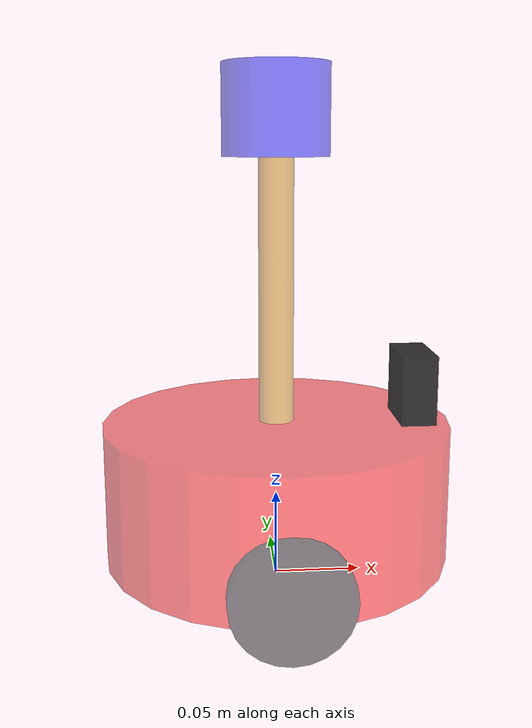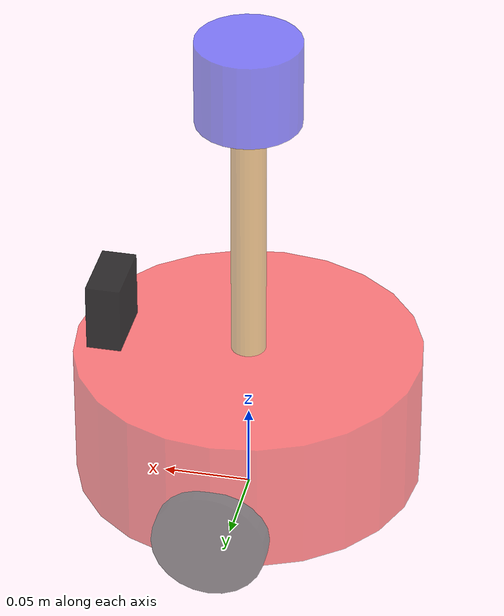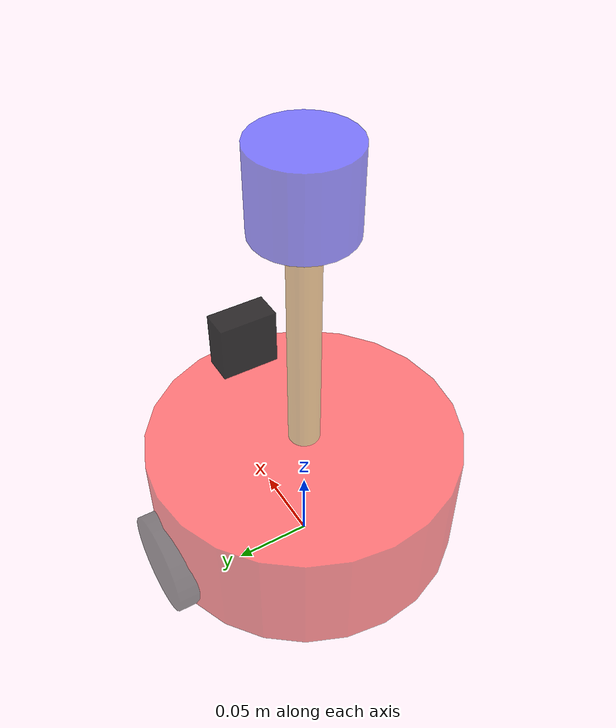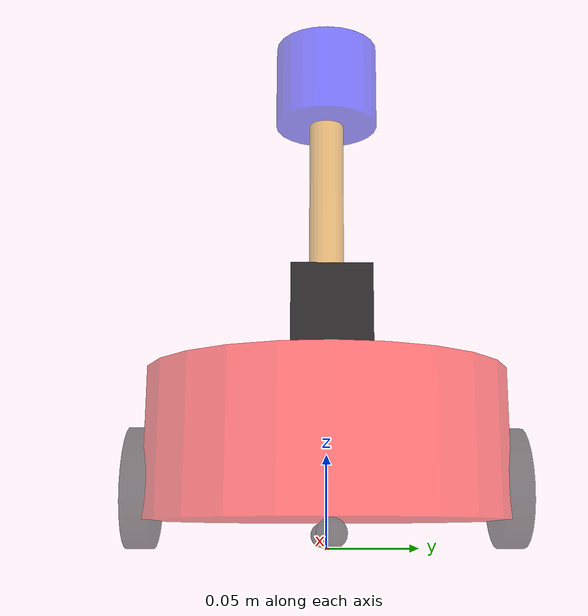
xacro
<!-- 组合小车底盘与摄像头 -->
<robot name="my_car_camera" xmlns:xacro="http://wiki.ros.org/xacro">
    <xacro:include filename="head.xacro" />
    <xacro:include filename="car_base.urdf.xacro" />
    <xacro:include filename="car_camera.urdf.xacro" />
    <xacro:include filename="car_laser.urdf.xacro" />

    <!--运动控制-->
    <xacro:include filename="gazebo/move.xacro" />
    <!--雷达控制-->
    <xacro:include filename="gazebo/laser.xacro" />

    <xacro:include filename="gazebo/camera.xacro" />

</robot>

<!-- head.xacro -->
<robot name="base" xmlns:xacro="http://wiki.ros.org/xacro">
<!-- Macro for inertia matrix -->
    <xacro:macro name="sphere_inertial_matrix" params="m r">
        <inertial>
            <mass value="${m}" />
            <inertia ixx="${2*m*r*r/5}" ixy="0" ixz="0"
                iyy="${2*m*r*r/5}" iyz="0"
                izz="${2*m*r*r/5}" />
        </inertial>
    </xacro:macro>

    <xacro:macro name="cylinder_inertial_matrix" params="m r h">
        <inertial>
            <mass value="${m}" />
            <inertia ixx="${m*(3*r*r+h*h)/12}" ixy = "0" ixz = "0"
                iyy="${m*(3*r*r+h*h)/12}" iyz = "0"
                izz="${m*r*r/2}" />
        </inertial>
    </xacro:macro>

    <xacro:macro name="Box_inertial_matrix" params="m l w h">
       <inertial>
               <mass value="${m}" />
               <inertia ixx="${m*(h*h + l*l)/12}" ixy = "0" ixz = "0"
                   iyy="${m*(w*w + l*l)/12}" iyz= "0"
                   izz="${m*(w*w + h*h)/12}" />
       </inertial>
    </xacro:macro>

</robot>

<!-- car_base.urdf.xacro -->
<robot name="mycar" xmlns:xacro="http://wiki.ros.org/xacro">

    <xacro:property name="footprint_radius" value="0.001" />

    <link name="base_footprint">
        <visual>
            <geometry>
                <sphere radius="${footprint_radius}" />
            </geometry>
        </visual>
    </link>

    <xacro:property name="base_radius" value="0.1" />
    <xacro:property name="base_length" value="0.08" />
    <xacro:property name="base_mass" value="2" />
    <xacro:property name="lidi" value="0.015" />
    <xacro:property name="base_joint_z" value="${base_length / 2 + lidi}" />
    <link name="base_link">
        <visual>
            <geometry>
                <cylinder radius="${base_radius}" length="${base_length}" />
            </geometry>
            <origin xyz="0 0 0" rpy="0 0 0" />
            <material name="baselink_color">
                <color rgba="1 0 0 0.5" />
            </material>
        </visual>

        <collision>
            <geometry>
                <cylinder radius="${base_radius}" length="${base_length}" />
            </geometry>
            <origin xyz="0 0 0" rpy="0 0 0" />
        </collision>

        <xacro:cylinder_inertial_matrix m="${base_mass}" r="${base_radius}" h="${base_length}" />
    </link>

    <gazebo reference="base_link">
        <material>Gazebo/Yellow</material>
    </gazebo>

    <joint name="link2footprint" type="fixed">
        <parent link="base_footprint" />
        <child link="base_link" />
        <origin xyz="0 0 ${base_joint_z}" rpy="0 0 0" />
    </joint>

    <xacro:property name="wheel_radius" value="0.0325" />
    <xacro:property name="wheel_length" value="0.015" />
    <xacro:property name="wheel_mass" value="0.05" />
    <xacro:property name="PI" value="${pi}" />
    <xacro:property name="wheel_joint_z" value="${(base_length / 2 +lidi -wheel_radius) * -1}" />

    <xacro:macro name="wheel_func" params="wheel_name flag">
        <link name="${wheel_name}_wheel">
            <visual>
                <geometry>
                    <cylinder radius="${wheel_radius}" length="${wheel_length}" />
                </geometry>
                <origin xyz="0 0 0" rpy="${PI /2} 0 0" />
                <material name="wheel_color">
                    <color rgba="0 0 0 0.5" />
                </material>
            </visual>

            <collision>
                <geometry>
                    <cylinder radius="${wheel_radius}" length="${wheel_length}" />
                </geometry>
                <origin xyz="0 0 0" rpy="${PI /2} 0 0" />
            </collision>

            <xacro:cylinder_inertial_matrix m="${wheel_mass}" r="${wheel_radius}" h="${wheel_length}" />
        </link>

        <gazebo reference="${wheel_name}_wheel">
            <material>Gazebo/Red</material>
        </gazebo>

        <joint name="${wheel_name}2link" type="continuous">
            <parent link="base_link" />
            <child link="${wheel_name}_wheel" />
            <origin xyz="0 ${0.1 * flag} ${wheel_joint_z}" rpy="0 0 0" />
            <axis xyz="0 1 0" />
        </joint>
    </xacro:macro>

    <xacro:wheel_func wheel_name="left" flag="1" />
    <xacro:wheel_func wheel_name="right" flag="-1" />

    <xacro:property name="small_wheel_radius" value="0.0075" />
    <xacro:property name="small_wheel_mass" value="0.01" />
    <xacro:property name="small_wheel_joint_z" value="${(base_length / 2 +lidi - small_wheel_radius) * -1}" />

    <xacro:macro name="small_wheel_func" params="small_wheel_name flag">
        <link name="${small_wheel_name}_wheel">
            <visual>
                <geometry>
                    <sphere radius="${small_wheel_radius}" />
                </geometry>
                <origin xyz="0 0 0" rpy="0 0 0" />
                <material name="wheel_color">
                    <color rgba="0 0 0 0.5" />
                </material>
            </visual>
            <collision>
                <geometry>
                    <sphere radius="${small_wheel_radius}" />
                </geometry>
                <origin xyz="0 0 0" rpy="0 0 0" />
            </collision>

            <xacro:sphere_inertial_matrix m="${small_wheel_mass}" r="${small_wheel_radius}" />
        </link>
        <gazebo reference="${small_wheel_name}_wheel">
            <material>Gazebo/Red</material>
        </gazebo>
        <joint name="${small_wheel_name}2link" type="continuous">
            <parent link="base_link" />
            <child link="${small_wheel_name}_wheel" />
            <origin xyz="${0.08 * flag} 0 ${small_wheel_joint_z}" rpy="0 0 0" />
            <axis xyz="0 1 0" />
        </joint>
    </xacro:macro>
    <xacro:small_wheel_func small_wheel_name="front" flag="1" />
    <xacro:small_wheel_func small_wheel_name="back" flag="-1" />

</robot>

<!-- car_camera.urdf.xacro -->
<robot name="mycar" xmlns:xacro="http://wiki.ros.org/xacro">
    <xacro:property name="camera_x" value="0.02" />
    <xacro:property name="camera_y" value="0.04" />
    <xacro:property name="camera_z" value="0.04" />
    <xacro:property name="camera_m" value="0.01" />
    <xacro:property name="joint_camera_x" value="0.08" />
    <xacro:property name="joint_camera_y" value="0" />
    <xacro:property name="joint_camera_z" value="${base_length / 2 + camera_z / 2}" />

    <link name="camera">
        <visual>
            <geometry>
                <box size="${camera_x} ${camera_y} ${camera_z}" />
            </geometry>

            <material name="black">
                <color rgba="0 0 0 0.8" />
            </material>
        </visual>
        <collision>
            <geometry>
                <box size="${camera_x} ${camera_y} ${camera_z}" />
            </geometry>
        </collision>
        <xacro:Box_inertial_matrix m="${camera_m}" l="${camera_x}" w="${camera_y}" h="${camera_z}" />
    </link>
    <gazebo reference="camera">
        <material>Gazebo/Blue</material>
    </gazebo>
    <joint name="camera2base" type="fixed">
        <parent link="base_link" />
        <child link="camera" />
        <origin xyz="${joint_camera_x} ${joint_camera_y} ${joint_camera_z}" rpy="0 0 0" />
    </joint>

</robot>

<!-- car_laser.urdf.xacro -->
<robot name="mycar" xmlns:xacro="http://wiki.ros.org/xacro">
    <xacro:property name="support_radius" value="0.01" />
    <xacro:property name="support_length" value="0.15" />
    <xacro:property name="support_mass" value="0.1" />
    <xacro:property name="laser_radius" value="0.03" />
    <xacro:property name="laser_length" value="0.05" />
    <xacro:property name="laser_mass" value="0.15" />

    <xacro:property name="joint_support_x" value="0" />
    <xacro:property name="joint_support_y" value="0" />
    <xacro:property name="joint_support_z" value="${base_length / 2 + support_length /2}" />
    <xacro:property name="joint_laser_x" value="0" />
    <xacro:property name="joint_laser_y" value="0" />
    <xacro:property name="joint_laser_z" value="${laser_length / 2 + support_length /2}" />

    <link name="support">
        <visual>
            <geometry>
                <cylinder radius="${support_radius}" length="${support_length}" />
            </geometry>
            <material name="yellow">
                <color rgba="0.8 0.5 0 0.5" />
            </material>
        </visual>
        <collision>
            <geometry>
                <cylinder radius="${support_radius}" length="${support_length}" />
            </geometry>
        </collision>
        <xacro:cylinder_inertial_matrix m="${support_mass}" r="${support_radius}" h="${support_length}" />
    </link>
    <gazebo reference="support">
        <material>Gazebo/Gray</material>
    </gazebo>
    <joint name="support2base" type="fixed">
        <parent link="base_link" />
        <child link="support" />
        <origin xyz="${joint_support_x} ${joint_support_y} ${joint_support_z}" rpy="0 0 0" />
    </joint>

    <link name="laser">
        <visual>
            <geometry>
                <cylinder radius="${laser_radius}" length="${laser_length}" />
            </geometry>
            <material name="blue">
                <color rgba="0 0 1 0.5" />
            </material>
        </visual>
        <collision>
            <geometry>
                <cylinder radius="${laser_radius}" length="${laser_length}" />
            </geometry>
        </collision>
        <xacro:cylinder_inertial_matrix m="${laser_mass}" r="${laser_radius}" h="${laser_length}" />
    </link>
    <gazebo reference="laser">
        <material>Gazebo/Black</material>
    </gazebo>
    <joint name="laser2base" type="fixed">
        <parent link="support" />
        <child link="laser" />
        <origin xyz="${joint_laser_x} ${joint_laser_y} ${joint_laser_z}" rpy="0 0 0" />
    </joint>
</robot>
